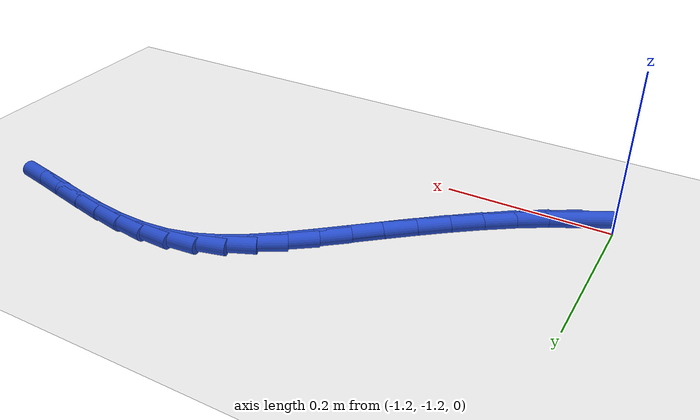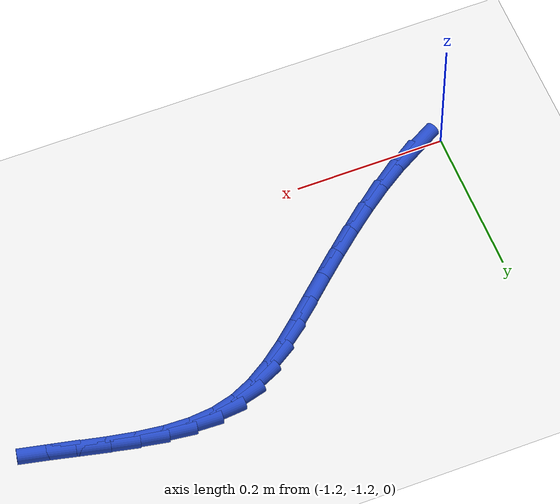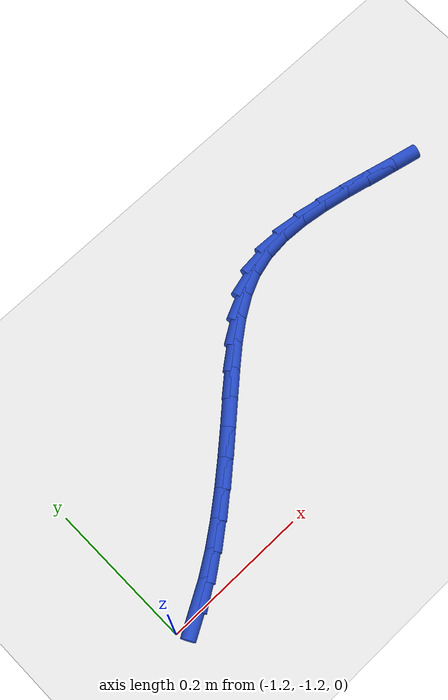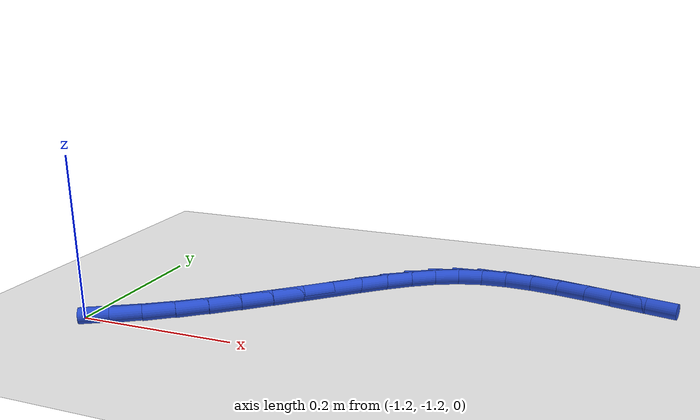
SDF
<sdf version="1.6">
 <world name="default">
  <model name="ground_plane">
   <static>1</static>
   <link name="link">
    <collision name="collision">
     <geometry><plane><normal>0 0 1</normal><size>100 100</size></plane></geometry>
     <surface><friction><ode><mu>100</mu><mu2>50</mu2></ode></friction></surface>
    </collision>
    <visual name="visual">
     <cast_shadows>0</cast_shadows>
     <geometry><plane><normal>0 0 1</normal><size>100 100</size></plane></geometry>
     <material>
      <script><uri>file://media/materials/scripts/gazebo.material</uri><name>Gazebo/WhiteGlow</name></script>
     </material>
    </visual>
   </link>
  </model>
  <model name="line">
   <link name="link_175">
    <pose>-1.1602995751859908 -1.19646605608364 0.01 0 1.57 0.5144382001285611</pose>
    <collision name="collision">
     <geometry><cylinder><radius>0.01</radius><length>0.08</length></cylinder></geometry>
    </collision>
    <visual name="visual">
     <material>
      <script><name>Gazebo/Blue</name><uri>file://media/materials/scripts/gazebo.material</uri></script>
     </material>
     <geometry><cylinder><radius>0.01</radius><length>0.08</length></cylinder></geometry>
    </visual>
   </link>
   <link name="link_176">
    <pose>-1.1291882512099591 -1.1788819329939886 0.01 0 1.57 0.5829226149070705</pose>
    <collision name="collision">
     <geometry><cylinder><radius>0.01</radius><length>0.08</length></cylinder></geometry>
    </collision>
    <visual name="visual">
     <material>
      <script><name>Gazebo/Blue</name><uri>file://media/materials/scripts/gazebo.material</uri></script>
     </material>
     <geometry><cylinder><radius>0.01</radius><length>0.08</length></cylinder></geometry>
    </visual>
   </link>
   <link name="link_177">
    <pose>-1.0980965032586225 -1.1583814767652592 0.01 0 1.57 0.635320584650959</pose>
    <collision name="collision">
     <geometry><cylinder><radius>0.01</radius><length>0.08</length></cylinder></geometry>
    </collision>
    <visual name="visual">
     <material>
      <script><name>Gazebo/Blue</name><uri>file://media/materials/scripts/gazebo.material</uri></script>
     </material>
     <geometry><cylinder><radius>0.01</radius><length>0.08</length></cylinder></geometry>
    </visual>
   </link>
   <link name="link_178">
    <pose>-1.0671572266507088 -1.135570084435953 0.01 0 1.57 0.6746176703134891</pose>
    <collision name="collision">
     <geometry><cylinder><radius>0.01</radius><length>0.08</length></cylinder></geometry>
    </collision>
    <visual name="visual">
     <material>
      <script><name>Gazebo/Blue</name><uri>file://media/materials/scripts/gazebo.material</uri></script>
     </material>
     <geometry><cylinder><radius>0.01</radius><length>0.08</length></cylinder></geometry>
    </visual>
   </link>
   <link name="link_179">
    <pose>-1.0365033167049431 -1.111053153044571 0.01 0 1.57 0.70289385221495</pose>
    <collision name="collision">
     <geometry><cylinder><radius>0.01</radius><length>0.08</length></cylinder></geometry>
    </collision>
    <visual name="visual">
     <material>
      <script><name>Gazebo/Blue</name><uri>file://media/materials/scripts/gazebo.material</uri></script>
     </material>
     <geometry><cylinder><radius>0.01</radius><length>0.08</length></cylinder></geometry>
    </visual>
   </link>
   <link name="link_180">
    <pose>-1.0062676687400542 -1.0854360796296154 0.01 0 1.57 0.7214548355387477</pose>
    <collision name="collision">
     <geometry><cylinder><radius>0.01</radius><length>0.08</length></cylinder></geometry>
    </collision>
    <visual name="visual">
     <material>
      <script><name>Gazebo/Blue</name><uri>file://media/materials/scripts/gazebo.material</uri></script>
     </material>
     <geometry><cylinder><radius>0.01</radius><length>0.08</length></cylinder></geometry>
    </visual>
   </link>
   <link name="link_181">
    <pose>-0.9765831780747678 -1.0593242612295874 0.01 0 1.57 0.7309214956828709</pose>
    <collision name="collision">
     <geometry><cylinder><radius>0.01</radius><length>0.08</length></cylinder></geometry>
    </collision>
    <visual name="visual">
     <material>
      <script><name>Gazebo/Blue</name><uri>file://media/materials/scripts/gazebo.material</uri></script>
     </material>
     <geometry><cylinder><radius>0.01</radius><length>0.08</length></cylinder></geometry>
    </visual>
   </link>
   <link name="link_182">
    <pose>-0.9475827400278107 -1.033323094882988 0.01 0 1.57 0.7309433250645246</pose>
    <collision name="collision">
     <geometry><cylinder><radius>0.01</radius><length>0.08</length></cylinder></geometry>
    </collision>
    <visual name="visual">
     <material>
      <script><name>Gazebo/Blue</name><uri>file://media/materials/scripts/gazebo.material</uri></script>
     </material>
     <geometry><cylinder><radius>0.01</radius><length>0.08</length></cylinder></geometry>
    </visual>
   </link>
   <link name="link_183">
    <pose>-0.9193882937405232 -1.0080434531045637 0.01 0 1.57 0.7115064589716875</pose>
    <collision name="collision">
     <geometry><cylinder><radius>0.01</radius><length>0.08</length></cylinder></geometry>
    </collision>
    <visual name="visual">
     <material>
      <script><name>Gazebo/Blue</name><uri>file://media/materials/scripts/gazebo.material</uri></script>
     </material>
     <geometry><cylinder><radius>0.01</radius><length>0.08</length></cylinder></geometry>
    </visual>
   </link>
   <link name="link_184">
    <pose>-0.8917991599981756 -0.984257440660312 0.01 0 1.57 0.6589417020982558</pose>
    <collision name="collision">
     <geometry><cylinder><radius>0.01</radius><length>0.08</length></cylinder></geometry>
    </collision>
    <visual name="visual">
     <material>
      <script><name>Gazebo/Blue</name><uri>file://media/materials/scripts/gazebo.material</uri></script>
     </material>
     <geometry><cylinder><radius>0.01</radius><length>0.08</length></cylinder></geometry>
    </visual>
   </link>
   <link name="link_185">
    <pose>-0.8642471155389959 -0.9629208467006568 0.01 0 1.57 0.5676799819355967</pose>
    <collision name="collision">
     <geometry><cylinder><radius>0.01</radius><length>0.08</length></cylinder></geometry>
    </collision>
    <visual name="visual">
     <material>
      <script><name>Gazebo/Blue</name><uri>file://media/materials/scripts/gazebo.material</uri></script>
     </material>
     <geometry><cylinder><radius>0.01</radius><length>0.08</length></cylinder></geometry>
    </visual>
   </link>
   <link name="link_186">
    <pose>-0.8361439478835053 -0.9449994502185406 0.01 0 1.57 0.43364411275358317</pose>
    <collision name="collision">
     <geometry><cylinder><radius>0.01</radius><length>0.08</length></cylinder></geometry>
    </collision>
    <visual name="visual">
     <material>
      <script><name>Gazebo/Blue</name><uri>file://media/materials/scripts/gazebo.material</uri></script>
     </material>
     <geometry><cylinder><radius>0.01</radius><length>0.08</length></cylinder></geometry>
    </visual>
   </link>
   <link name="link_187">
    <pose>-0.806901444552226 -0.9314590302069062 0.01 0 1.57 0.26025933838369425</pose>
    <collision name="collision">
     <geometry><cylinder><radius>0.01</radius><length>0.08</length></cylinder></geometry>
    </collision>
    <visual name="visual">
     <material>
      <script><name>Gazebo/Blue</name><uri>file://media/materials/scripts/gazebo.material</uri></script>
     </material>
     <geometry><cylinder><radius>0.01</radius><length>0.08</length></cylinder></geometry>
    </visual>
   </link>
   <link name="link_188">
    <pose>-0.775955157599941 -0.9232180571395158 0.01 0 1.57 0.09118530443215563</pose>
    <collision name="collision">
     <geometry><cylinder><radius>0.01</radius><length>0.08</length></cylinder></geometry>
    </collision>
    <visual name="visual">
     <material>
      <script><name>Gazebo/Blue</name><uri>file://media/materials/scripts/gazebo.material</uri></script>
     </material>
     <geometry><cylinder><radius>0.01</radius><length>0.08</length></cylinder></geometry>
    </visual>
   </link>
   <link name="link_189">
    <pose>-0.7432276542136516 -0.9202254910226007 0.01 0 1.57 -0.037981176044747926</pose>
    <collision name="collision">
     <geometry><cylinder><radius>0.01</radius><length>0.08</length></cylinder></geometry>
    </collision>
    <visual name="visual">
     <material>
      <script><name>Gazebo/Blue</name><uri>file://media/materials/scripts/gazebo.material</uri></script>
     </material>
     <geometry><cylinder><radius>0.01</radius><length>0.08</length></cylinder></geometry>
    </visual>
   </link>
   <link name="link_190">
    <pose>-0.7090975557437309 -0.9215224159958998 0.01 0 1.57 -0.1299687277842573</pose>
    <collision name="collision">
     <geometry><cylinder><radius>0.01</radius><length>0.08</length></cylinder></geometry>
    </collision>
    <visual name="visual">
     <material>
      <script><name>Gazebo/Blue</name><uri>file://media/materials/scripts/gazebo.material</uri></script>
     </material>
     <geometry><cylinder><radius>0.01</radius><length>0.08</length></cylinder></geometry>
    </visual>
   </link>
   <link name="link_191">
    <pose>-0.673961047505142 -0.9261149512742574 0.01 0 1.57 -0.19052488772717266</pose>
    <collision name="collision">
     <geometry><cylinder><radius>0.01</radius><length>0.08</length></cylinder></geometry>
    </collision>
    <visual name="visual">
     <material>
      <script><name>Gazebo/Blue</name><uri>file://media/materials/scripts/gazebo.material</uri></script>
     </material>
     <geometry><cylinder><radius>0.01</radius><length>0.08</length></cylinder></geometry>
    </visual>
   </link>
   <link name="link_192">
    <pose>-0.6382143148128481 -0.9330092160725177 0.01 0 1.57 -0.22424886616120296</pose>
    <collision name="collision">
     <geometry><cylinder><radius>0.01</radius><length>0.08</length></cylinder></geometry>
    </collision>
    <visual name="visual">
     <material>
      <script><name>Gazebo/Blue</name><uri>file://media/materials/scripts/gazebo.material</uri></script>
     </material>
     <geometry><cylinder><radius>0.01</radius><length>0.08</length></cylinder></geometry>
    </visual>
   </link>
   <link name="link_193">
    <pose>-0.6022535429818138 -0.941211329605525 0.01 0 1.57 -0.2336733799651859</pose>
    <collision name="collision">
     <geometry><cylinder><radius>0.01</radius><length>0.08</length></cylinder></geometry>
    </collision>
    <visual name="visual">
     <material>
      <script><name>Gazebo/Blue</name><uri>file://media/materials/scripts/gazebo.material</uri></script>
     </material>
     <geometry><cylinder><radius>0.01</radius><length>0.08</length></cylinder></geometry>
    </visual>
   </link>
   <link name="link_194">
    <pose>-0.5664749173270017 -0.9497274110881231 0.01 0 1.57 -0.21904470193347123</pose>
    <collision name="collision">
     <geometry><cylinder><radius>0.01</radius><length>0.08</length></cylinder></geometry>
    </collision>
    <visual name="visual">
     <material>
      <script><name>Gazebo/Blue</name><uri>file://media/materials/scripts/gazebo.material</uri></script>
     </material>
     <geometry><cylinder><radius>0.01</radius><length>0.08</length></cylinder></geometry>
    </visual>
   </link>
  </model>
 </world>
</sdf>
